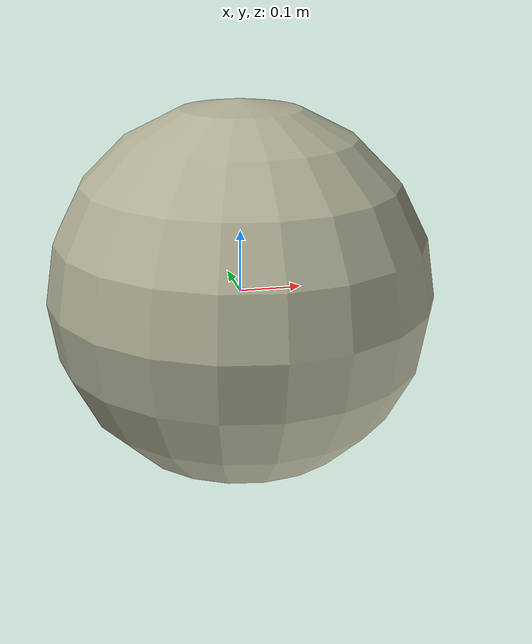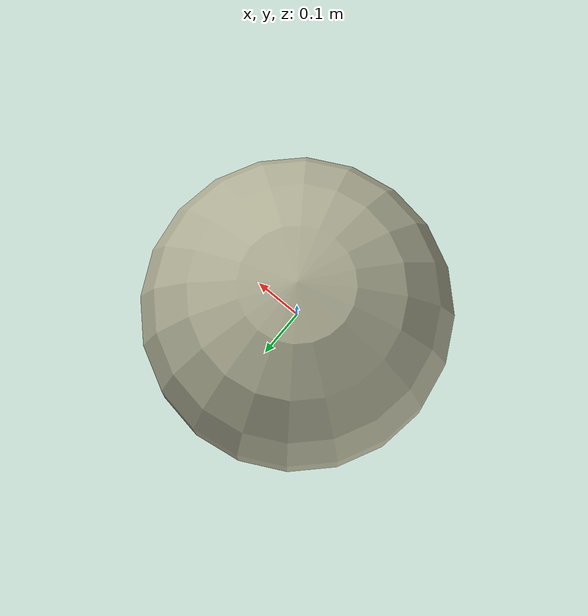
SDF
<?xml version='1.0'?>
<sdf version='1.7'>
  <model name='ball_p6'>
    <link name='aws_robomaker_residential_Ball_01::link'>
      <inertial>
        <mass>0.12</mass>
        <inertia>
          <ixx>0.030752</ixx>
          <ixy>0</ixy>
          <ixz>0</ixz>
          <iyy>0.030752</iyy>
          <iyz>0</iyz>
          <izz>0.030752</izz>
        </inertia>
        <pose>0 0 0 0 -0 0</pose>
      </inertial>
      <pose>0 0 0 0 -0 0</pose>
      <self_collide>0</self_collide>
      <enable_wind>0</enable_wind>
      <kinematic>0</kinematic>
      <gravity>1</gravity>
      <visual name='visual'>
        <geometry>
          <sphere>
            <radius>0.31</radius>
          </sphere>
        </geometry>
        <material>
          <diffuse>0.97 0.12 0.97 1</diffuse>
          <ambient>0.21 0.003 0.27 1</ambient>
          <shader type='pixel'>
            <normal_map>__default__</normal_map>
          </shader>
          <script>
            <name>ModelPreview_1::aws_robomaker_residential_Ball_01::link::visual_MATERIAL_</name>
            <uri>__default__</uri>
          </script>
          <specular>0 0 0 1</specular>
          <emissive>0 0 0 1</emissive>
        </material>
        <meta>
          <layer>1</layer>
        </meta>
        <pose>0 0 0 0 -0 0</pose>
        <transparency>0</transparency>
        <cast_shadows>1</cast_shadows>
      </visual>
      <collision name='collision'>
        <laser_retro>0</laser_retro>
        <max_contacts>10</max_contacts>
        <pose>0 0 0 0 -0 0</pose>
        <geometry>
          <sphere>
            <radius>0.31</radius>
          </sphere>
        </geometry>
        <surface>
          <friction>
            <ode>
              <mu>0.85</mu>
              <mu2>0.85</mu2>
              <fdir1>0 0 0</fdir1>
              <slip1>0</slip1>
              <slip2>0</slip2>
            </ode>
            <torsional>
              <coefficient>1</coefficient>
              <patch_radius>0</patch_radius>
              <surface_radius>0</surface_radius>
              <use_patch_radius>1</use_patch_radius>
              <ode>
                <slip>0</slip>
              </ode>
            </torsional>
          </friction>
          <bounce>
            <restitution_coefficient>0</restitution_coefficient>
            <threshold>1e+06</threshold>
          </bounce>
          <contact>
            <collide_without_contact>0</collide_without_contact>
            <collide_without_contact_bitmask>1</collide_without_contact_bitmask>
            <collide_bitmask>1</collide_bitmask>
            <ode>
              <soft_cfm>0</soft_cfm>
              <soft_erp>0.2</soft_erp>
              <kp>1e+13</kp>
              <kd>8500</kd>
              <max_vel>5.1</max_vel>
              <min_depth>0</min_depth>
            </ode>
            <bullet>
              <split_impulse>1</split_impulse>
              <split_impulse_penetration_threshold>-0.01</split_impulse_penetration_threshold>
              <soft_cfm>0</soft_cfm>
              <soft_erp>0.2</soft_erp>
              <kp>1e+13</kp>
              <kd>8500</kd>
            </bullet>
          </contact>
        </surface>
      </collision>
    </link>
    <static>1</static>
    <allow_auto_disable>1</allow_auto_disable>
  </model>
</sdf>
